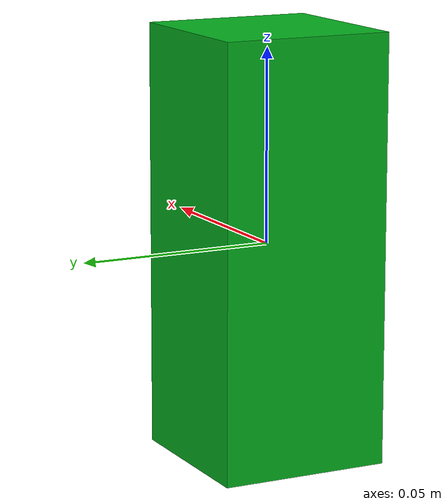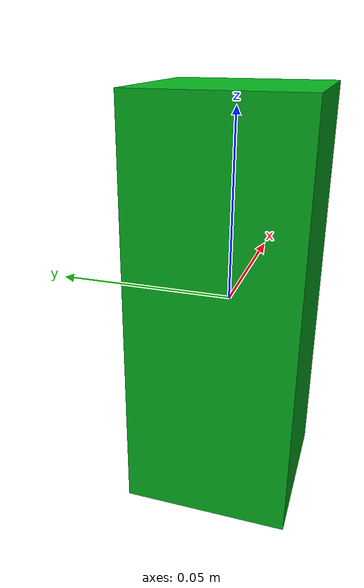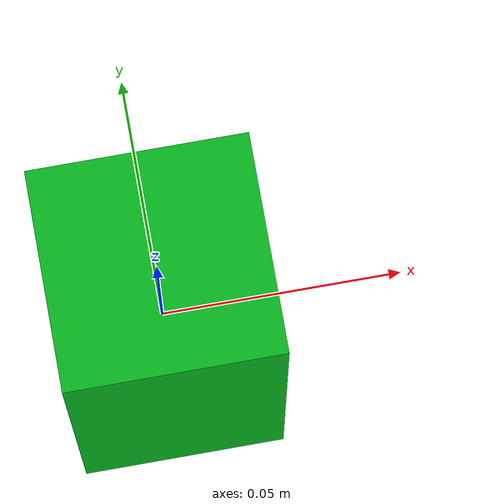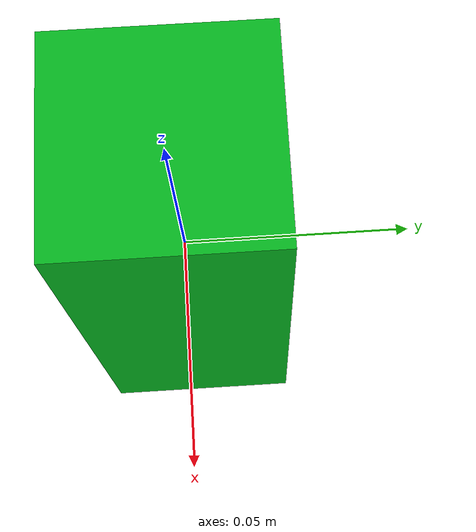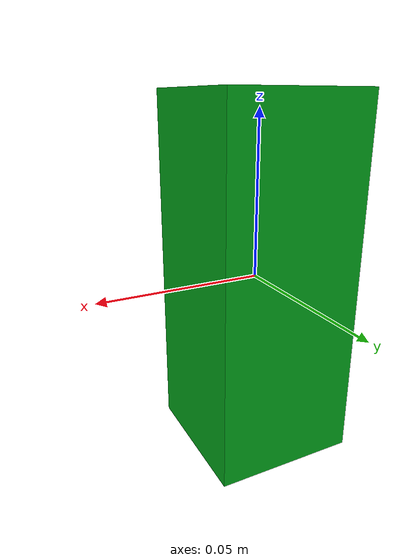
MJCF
<mujoco model="green_peg">
  <worldbody>
    <body>
      <body name="object">
        <!-- Upright 4.4cm square peg, tall enough to grasp reliably with Panda fingers. -->
        <geom type="box" size="0.022 0.022 0.055" pos="0 0 0" rgba="0.02 0.70 0.12 1" group="1" contype="0" conaffinity="0" />
        <geom type="box" size="0.022 0.022 0.055" pos="0 0 0" rgba="0.02 0.70 0.12 1" group="0" density="380" friction="8.0 0.05 0.0001" solimp="0.995 0.995 0.001" solref="0.001 1" />
      </body>
      <site rgba="0 0 0 0" size="0.005" pos="0 0 -0.055" name="bottom_site" group="0" />
      <site rgba="0 0 0 0" size="0.005" pos="0 0 0.055" name="top_site" group="0" />
      <site rgba="0 0 0 0" size="0.022" pos="0.022 0.022 0.000" name="horizontal_radius_site" group="0" />
    </body>
  </worldbody>
</mujoco>
